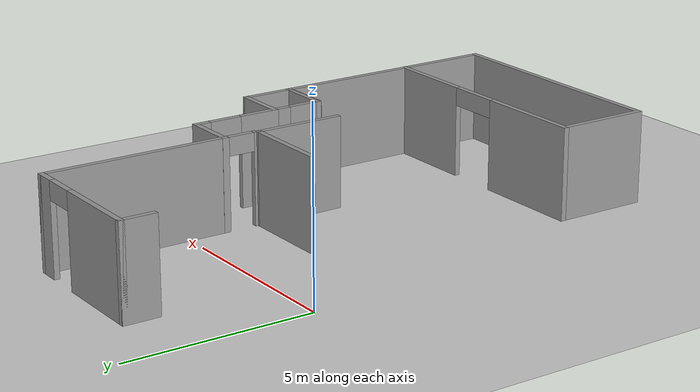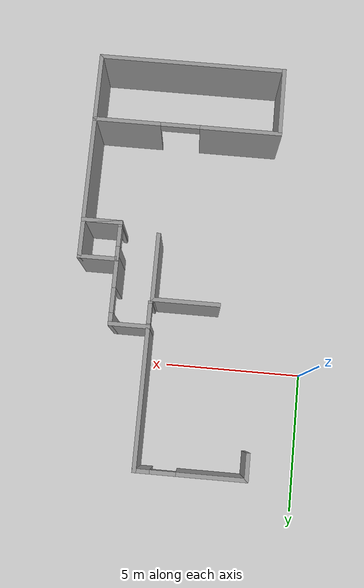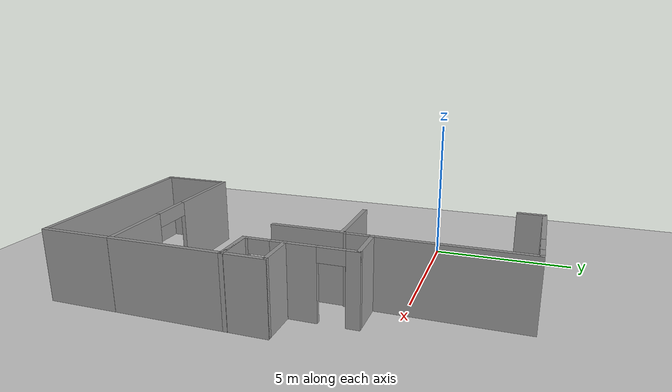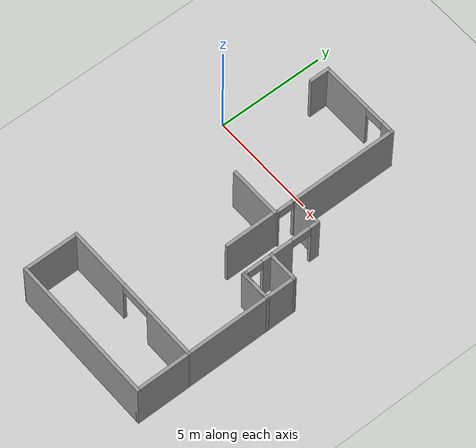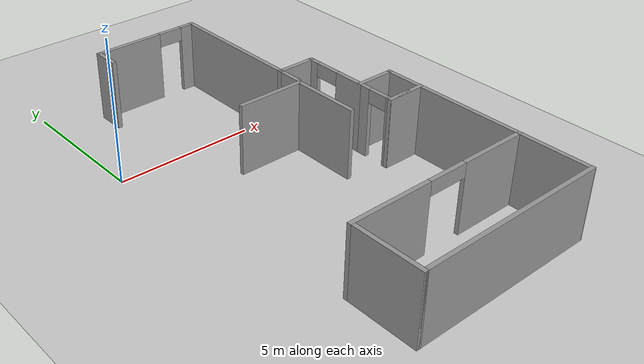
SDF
<sdf version="1.6">
 <world name="default">
  <model name="ground_plane">
   <static>1</static>
   <link name="link">
    <collision name="collision">
     <geometry><plane><normal>0 0 1</normal><size>100 100</size></plane></geometry>
     <surface><friction><ode><mu>100</mu><mu2>50</mu2></ode></friction></surface>
    </collision>
    <visual name="visual">
     <cast_shadows>0</cast_shadows>
     <geometry><plane><normal>0 0 1</normal><size>100 100</size></plane></geometry>
     <material>
      <script><uri>file://media/materials/scripts/gazebo.material</uri><name>Gazebo/Grey</name></script>
     </material>
    </visual>
   </link>
  </model>
  <model name="cma_parede_L">
   <pose>4.97628 -6.69992 0 0 -0 0</pose>
   <link name="Wall_0">
    <pose>0 -1.925 0 0 -0 0</pose>
    <visual name="Wall_0_Visual_0">
     <pose>-1.985 0 1.25 0 -0 0</pose>
     <geometry><box><size>3.03 0.15 2.5</size></box></geometry>
     <material>
      <script><uri>file://media/materials/scripts/gazebo.material</uri><name>Gazebo/Grey</name></script>
      <ambient>1 1 1 1</ambient>
     </material>
    </visual>
    <collision name="Wall_0_Collision_0">
     <geometry><box><size>3.03 0.15 2.5</size></box></geometry>
     <pose>-1.985 0 1.25 0 -0 0</pose>
    </collision>
    <visual name="Wall_0_Visual_1">
     <pose>2.24 0 1.25 0 -0 0</pose>
     <geometry><box><size>2.52 0.15 2.5</size></box></geometry>
     <material>
      <script><uri>file://media/materials/scripts/gazebo.material</uri><name>Gazebo/Grey</name></script>
      <ambient>1 1 1 1</ambient>
     </material>
    </visual>
    <collision name="Wall_0_Collision_1">
     <geometry><box><size>2.52 0.15 2.5</size></box></geometry>
     <pose>2.24 0 1.25 0 -0 0</pose>
    </collision>
    <visual name="Wall_0_Visual_2">
     <pose>0.255 0 2.25 0 -0 0</pose>
     <geometry><box><size>1.45 0.15 0.5</size></box></geometry>
     <material>
      <script><uri>file://media/materials/scripts/gazebo.material</uri><name>Gazebo/Grey</name></script>
      <ambient>1 1 1 1</ambient>
     </material>
    </visual>
    <collision name="Wall_0_Collision_2">
     <geometry><box><size>1.45 0.15 0.5</size></box></geometry>
     <pose>0.255 0 2.25 0 -0 0</pose>
    </collision>
   </link>
   <link name="Wall_1">
    <collision name="Wall_1_Collision">
     <geometry><box><size>4 0.15 2.5</size></box></geometry>
     <pose>0 0 1.25 0 -0 0</pose>
    </collision>
    <visual name="Wall_1_Visual">
     <pose>0 0 1.25 0 -0 0</pose>
     <geometry><box><size>4 0.15 2.5</size></box></geometry>
     <material>
      <script><uri>file://media/materials/scripts/gazebo.material</uri><name>Gazebo/Grey</name></script>
      <ambient>1 1 1 1</ambient>
     </material>
    </visual>
    <pose>3.425 0 0 0 -0 1.5708</pose>
   </link>
   <link name="Wall_2">
    <collision name="Wall_2_Collision">
     <geometry><box><size>1.5 0.15 2.5</size></box></geometry>
     <pose>0 0 1.25 0 -0 0</pose>
    </collision>
    <visual name="Wall_2_Visual">
     <pose>0 0 1.25 0 -0 0</pose>
     <geometry><box><size>1.5 0.15 2.5</size></box></geometry>
     <material>
      <script><uri>file://media/materials/scripts/gazebo.material</uri><name>Gazebo/Grey</name></script>
      <ambient>1 1 1 1</ambient>
     </material>
    </visual>
    <pose>2.75 1.925 0 0 -0 3.14159</pose>
   </link>
   <static>1</static>
  </model>
  <model name="cma_lavabo">
   <pose>7.72297 -4.09302 0 0 -0 0</pose>
   <link name="Wall_4">
    <pose>-0.675 0 0 0 -0 1.5708</pose>
    <visual name="Wall_4_Visual_0">
     <pose>-0.635 0 1.25 0 -0 0</pose>
     <geometry><box><size>0.23 0.15 2.5</size></box></geometry>
     <material>
      <script><uri>file://media/materials/scripts/gazebo.material</uri><name>Gazebo/Grey</name></script>
      <ambient>1 1 1 1</ambient>
     </material>
    </visual>
    <collision name="Wall_4_Collision_0">
     <geometry><box><size>0.23 0.15 2.5</size></box></geometry>
     <pose>-0.635 0 1.25 0 -0 0</pose>
    </collision>
    <visual name="Wall_4_Visual_1">
     <pose>0.48 0 1.25 0 -0 0</pose>
     <geometry><box><size>0.54 0.15 2.5</size></box></geometry>
     <material>
      <script><uri>file://media/materials/scripts/gazebo.material</uri><name>Gazebo/Grey</name></script>
      <ambient>1 1 1 1</ambient>
     </material>
    </visual>
    <collision name="Wall_4_Collision_1">
     <geometry><box><size>0.54 0.15 2.5</size></box></geometry>
     <pose>0.48 0 1.25 0 -0 0</pose>
    </collision>
    <visual name="Wall_4_Visual_2">
     <pose>-0.155 0 2.25 0 -0 0</pose>
     <geometry><box><size>0.73 0.15 0.5</size></box></geometry>
     <material>
      <script><uri>file://media/materials/scripts/gazebo.material</uri><name>Gazebo/Grey</name></script>
      <ambient>1 1 1 1</ambient>
     </material>
    </visual>
    <collision name="Wall_4_Collision_2">
     <geometry><box><size>0.73 0.15 0.5</size></box></geometry>
     <pose>-0.155 0 2.25 0 -0 0</pose>
    </collision>
   </link>
   <link name="Wall_5">
    <collision name="Wall_5_Collision">
     <geometry><box><size>1.5 0.15 2.5</size></box></geometry>
     <pose>0 0 1.25 0 -0 0</pose>
    </collision>
    <visual name="Wall_5_Visual">
     <pose>0 0 1.25 0 -0 0</pose>
     <geometry><box><size>1.5 0.15 2.5</size></box></geometry>
     <material>
      <script><uri>file://media/materials/scripts/gazebo.material</uri><name>Gazebo/Grey</name></script>
      <ambient>1 1 1 1</ambient>
     </material>
    </visual>
    <pose>0 0.675 0 0 -0 0</pose>
   </link>
   <link name="Wall_6">
    <collision name="Wall_6_Collision">
     <geometry><box><size>1.5 0.15 2.5</size></box></geometry>
     <pose>0 0 1.25 0 -0 0</pose>
    </collision>
    <visual name="Wall_6_Visual">
     <pose>0 0 1.25 0 -0 0</pose>
     <geometry><box><size>1.5 0.15 2.5</size></box></geometry>
     <material>
      <script><uri>file://media/materials/scripts/gazebo.material</uri><name>Gazebo/Grey</name></script>
      <ambient>1 1 1 1</ambient>
     </material>
    </visual>
    <pose>0.675 0 0 0 0 -1.5708</pose>
   </link>
   <link name="Wall_7">
    <collision name="Wall_7_Collision">
     <geometry><box><size>1.5 0.15 2.5</size></box></geometry>
     <pose>0 0 1.25 0 -0 0</pose>
    </collision>
    <visual name="Wall_7_Visual">
     <pose>0 0 1.25 0 -0 0</pose>
     <geometry><box><size>1.5 0.15 2.5</size></box></geometry>
     <material>
      <script><uri>file://media/materials/scripts/gazebo.material</uri><name>Gazebo/Grey</name></script>
      <ambient>1 1 1 1</ambient>
     </material>
    </visual>
    <pose>0 -0.675 0 0 -0 3.14159</pose>
   </link>
   <static>1</static>
  </model>
  <model name="cma_L2">
   <pose>4.4627 -3.25053 0 0 -0 0</pose>
   <link name="Wall_10">
    <collision name="Wall_10_Collision">
     <geometry><box><size>2.5 0.15 2.5</size></box></geometry>
     <pose>0 0 1.25 0 -0 0</pose>
    </collision>
    <visual name="Wall_10_Visual">
     <pose>0 0 1.25 0 -0 0</pose>
     <geometry><box><size>2.5 0.15 2.5</size></box></geometry>
     <material>
      <script><uri>file://media/materials/scripts/gazebo.material</uri><name>Gazebo/Grey</name></script>
      <ambient>1 1 1 1</ambient>
     </material>
    </visual>
    <pose>1.175 0 0 0 0 -1.5708</pose>
   </link>
   <link name="Wall_9">
    <collision name="Wall_9_Collision">
     <geometry><box><size>2.5 0.15 2.5</size></box></geometry>
     <pose>0 0 1.25 0 -0 0</pose>
    </collision>
    <visual name="Wall_9_Visual">
     <pose>0 0 1.25 0 -0 0</pose>
     <geometry><box><size>2.5 0.15 2.5</size></box></geometry>
     <material>
      <script><uri>file://media/materials/scripts/gazebo.material</uri><name>Gazebo/Grey</name></script>
      <ambient>1 1 1 1</ambient>
     </material>
    </visual>
    <pose>0 1.175 0 0 -0 0</pose>
   </link>
   <static>1</static>
  </model>
  <model name="cma_L3">
   <pose>6.37221 -2.26022 0 0 -0 0</pose>
   <link name="Wall_12">
    <pose>-0.675 0.75 0 0 -0 1.5708</pose>
    <visual name="Wall_12_Visual_0">
     <pose>-0.46 0 1.25 0 -0 0</pose>
     <geometry><box><size>0.08 0.15 2.5</size></box></geometry>
     <material>
      <script><uri>file://media/materials/scripts/gazebo.material</uri><name>Gazebo/Grey</name></script>
      <ambient>1 1 1 1</ambient>
     </material>
    </visual>
    <collision name="Wall_12_Collision_0">
     <geometry><box><size>0.08 0.15 2.5</size></box></geometry>
     <pose>-0.46 0 1.25 0 -0 0</pose>
    </collision>
    <visual name="Wall_12_Visual_1">
     <pose>0.405 0 1.25 0 -0 0</pose>
     <geometry><box><size>0.19 0.15 2.5</size></box></geometry>
     <material>
      <script><uri>file://media/materials/scripts/gazebo.material</uri><name>Gazebo/Grey</name></script>
      <ambient>1 1 1 1</ambient>
     </material>
    </visual>
    <collision name="Wall_12_Collision_1">
     <geometry><box><size>0.19 0.15 2.5</size></box></geometry>
     <pose>0.405 0 1.25 0 -0 0</pose>
    </collision>
    <visual name="Wall_12_Visual_2">
     <pose>-0.055 0 2.25 0 -0 0</pose>
     <geometry><box><size>0.73 0.15 0.5</size></box></geometry>
     <material>
      <script><uri>file://media/materials/scripts/gazebo.material</uri><name>Gazebo/Grey</name></script>
      <ambient>1 1 1 1</ambient>
     </material>
    </visual>
    <collision name="Wall_12_Collision_2">
     <geometry><box><size>0.73 0.15 0.5</size></box></geometry>
     <pose>-0.055 0 2.25 0 -0 0</pose>
    </collision>
   </link>
   <link name="Wall_13">
    <collision name="Wall_13_Collision">
     <geometry><box><size>1.5 0.15 2.5</size></box></geometry>
     <pose>0 0 1.25 0 -0 0</pose>
    </collision>
    <visual name="Wall_13_Visual">
     <pose>0 0 1.25 0 -0 0</pose>
     <geometry><box><size>1.5 0.15 2.5</size></box></geometry>
     <material>
      <script><uri>file://media/materials/scripts/gazebo.material</uri><name>Gazebo/Grey</name></script>
      <ambient>1 1 1 1</ambient>
     </material>
    </visual>
    <pose>0 1.175 0 0 -0 0</pose>
   </link>
   <link name="Wall_14">
    <pose>0.675 0 0 0 0 -1.5708</pose>
    <visual name="Wall_14_Visual_0">
     <pose>-1.0175 0 1.25 0 -0 0</pose>
     <geometry><box><size>0.465 0.15 2.5</size></box></geometry>
     <material>
      <script><uri>file://media/materials/scripts/gazebo.material</uri><name>Gazebo/Grey</name></script>
      <ambient>1 1 1 1</ambient>
     </material>
    </visual>
    <collision name="Wall_14_Collision_0">
     <geometry><box><size>0.465 0.15 2.5</size></box></geometry>
     <pose>-1.0175 0 1.25 0 -0 0</pose>
    </collision>
    <visual name="Wall_14_Visual_1">
     <pose>0.6825 0 1.25 0 -0 0</pose>
     <geometry><box><size>1.135 0.15 2.5</size></box></geometry>
     <material>
      <script><uri>file://media/materials/scripts/gazebo.material</uri><name>Gazebo/Grey</name></script>
      <ambient>1 1 1 1</ambient>
     </material>
    </visual>
    <collision name="Wall_14_Collision_1">
     <geometry><box><size>1.135 0.15 2.5</size></box></geometry>
     <pose>0.6825 0 1.25 0 -0 0</pose>
    </collision>
    <visual name="Wall_14_Visual_2">
     <pose>-0.335 0 2.25 0 -0 0</pose>
     <geometry><box><size>0.9 0.15 0.5</size></box></geometry>
     <material>
      <script><uri>file://media/materials/scripts/gazebo.material</uri><name>Gazebo/Grey</name></script>
      <ambient>1 1 1 1</ambient>
     </material>
    </visual>
    <collision name="Wall_14_Collision_2">
     <geometry><box><size>0.9 0.15 0.5</size></box></geometry>
     <pose>-0.335 0 2.25 0 -0 0</pose>
    </collision>
   </link>
   <static>1</static>
  </model>
  <model name="cma_U">
   <pose>4.97895 -9.92408 0 0 -0 0</pose>
   <link name="Wall_16">
    <collision name="Wall_16_Collision">
     <geometry><box><size>2.5 0.15 2.5</size></box></geometry>
     <pose>0 0 1.25 0 -0 0</pose>
    </collision>
    <visual name="Wall_16_Visual">
     <pose>0 0 1.25 0 -0 0</pose>
     <geometry><box><size>2.5 0.15 2.5</size></box></geometry>
     <material>
      <script><uri>file://media/materials/scripts/gazebo.material</uri><name>Gazebo/Grey</name></script>
      <ambient>1 1 1 1</ambient>
     </material>
    </visual>
    <pose>-3.425 0 0 0 0 -1.5708</pose>
   </link>
   <link name="Wall_17">
    <collision name="Wall_17_Collision">
     <geometry><box><size>7 0.15 2.5</size></box></geometry>
     <pose>0 0 1.25 0 -0 0</pose>
    </collision>
    <visual name="Wall_17_Visual">
     <pose>0 0 1.25 0 -0 0</pose>
     <geometry><box><size>7 0.15 2.5</size></box></geometry>
     <material>
      <script><uri>file://media/materials/scripts/gazebo.material</uri><name>Gazebo/Grey</name></script>
      <ambient>1 1 1 1</ambient>
     </material>
    </visual>
    <pose>0 -1.175 0 0 -0 0</pose>
   </link>
   <link name="Wall_18">
    <collision name="Wall_18_Collision">
     <geometry><box><size>2.5 0.15 2.5</size></box></geometry>
     <pose>0 0 1.25 0 -0 0</pose>
    </collision>
    <visual name="Wall_18_Visual">
     <pose>0 0 1.25 0 -0 0</pose>
     <geometry><box><size>2.5 0.15 2.5</size></box></geometry>
     <material>
      <script><uri>file://media/materials/scripts/gazebo.material</uri><name>Gazebo/Grey</name></script>
      <ambient>1 1 1 1</ambient>
     </material>
    </visual>
    <pose>3.425 0 0 0 -0 1.5708</pose>
   </link>
   <static>1</static>
  </model>
  <model name="cma_L5">
   <pose>3.77502 1.45512 0 0 -0 0</pose>
   <link name="Wall_0">
    <collision name="Wall_0_Collision">
     <geometry><box><size>1 0.15 2.5</size></box></geometry>
     <pose>0 0 1.25 0 -0 0</pose>
    </collision>
    <visual name="Wall_0_Visual">
     <pose>0 0 1.25 0 -0 0</pose>
     <geometry><box><size>1 0.15 2.5</size></box></geometry>
     <material>
      <script><uri>file://media/materials/scripts/gazebo.material</uri><name>Gazebo/Grey</name></script>
      <ambient>1 1 1 1</ambient>
     </material>
    </visual>
    <pose>-1.925 2 0 0 -0 1.5708</pose>
   </link>
   <link name="Wall_1">
    <pose>0 2.425 0 0 -0 0</pose>
    <visual name="Wall_1_Visual_0">
     <pose>-0.7525 0 1.25 0 -0 0</pose>
     <geometry><box><size>2.495 0.15 2.5</size></box></geometry>
     <material>
      <script><uri>file://media/materials/scripts/gazebo.material</uri><name>Gazebo/Grey</name></script>
      <ambient>1 1 1 1</ambient>
     </material>
    </visual>
    <collision name="Wall_1_Collision_0">
     <geometry><box><size>2.495 0.15 2.5</size></box></geometry>
     <pose>-0.7525 0 1.25 0 -0 0</pose>
    </collision>
    <visual name="Wall_1_Visual_1">
     <pose>1.6975 0 1.25 0 -0 0</pose>
     <geometry><box><size>0.605 0.15 2.5</size></box></geometry>
     <material>
      <script><uri>file://media/materials/scripts/gazebo.material</uri><name>Gazebo/Grey</name></script>
      <ambient>1 1 1 1</ambient>
     </material>
    </visual>
    <collision name="Wall_1_Collision_1">
     <geometry><box><size>0.605 0.15 2.5</size></box></geometry>
     <pose>1.6975 0 1.25 0 -0 0</pose>
    </collision>
    <visual name="Wall_1_Visual_2">
     <pose>0.945 0 2.25 0 -0 0</pose>
     <geometry><box><size>0.9 0.15 0.5</size></box></geometry>
     <material>
      <script><uri>file://media/materials/scripts/gazebo.material</uri><name>Gazebo/Grey</name></script>
      <ambient>1 1 1 1</ambient>
     </material>
    </visual>
    <collision name="Wall_1_Collision_2">
     <geometry><box><size>0.9 0.15 0.5</size></box></geometry>
     <pose>0.945 0 2.25 0 -0 0</pose>
    </collision>
   </link>
   <link name="Wall_3">
    <collision name="Wall_3_Collision">
     <geometry><box><size>5 0.15 2.5</size></box></geometry>
     <pose>0 0 1.25 0 -0 0</pose>
    </collision>
    <visual name="Wall_3_Visual">
     <pose>0 0 1.25 0 -0 0</pose>
     <geometry><box><size>5 0.15 2.5</size></box></geometry>
     <material>
      <script><uri>file://media/materials/scripts/gazebo.material</uri><name>Gazebo/Grey</name></script>
      <ambient>1 1 1 1</ambient>
     </material>
    </visual>
    <pose>1.925 0 0 0 0 -1.5708</pose>
   </link>
   <static>1</static>
  </model>
 </world>
</sdf>
